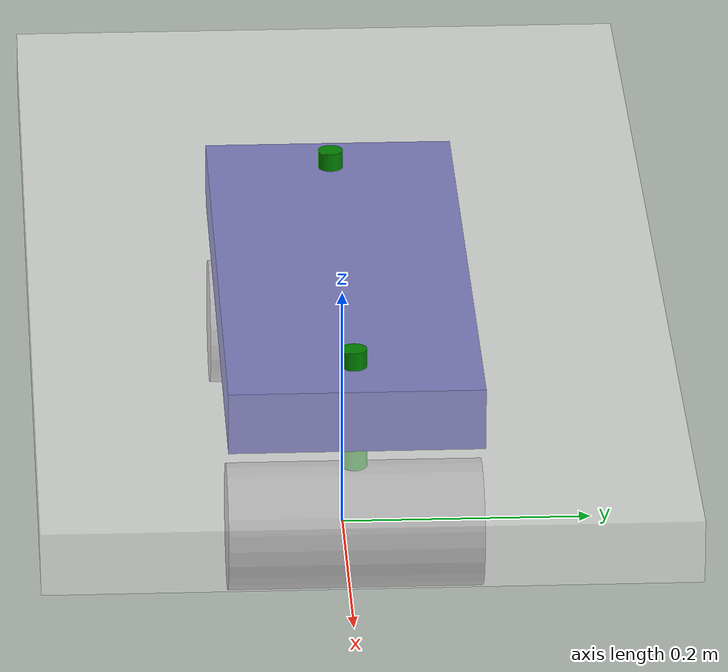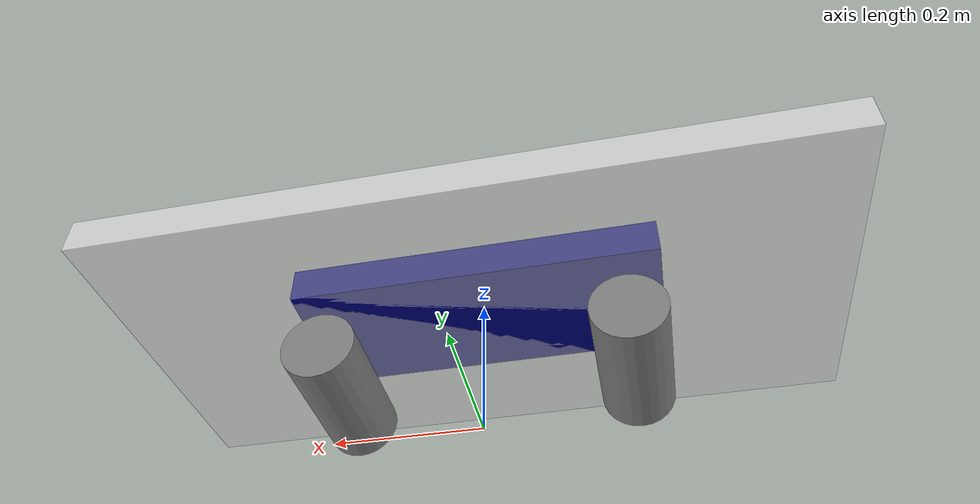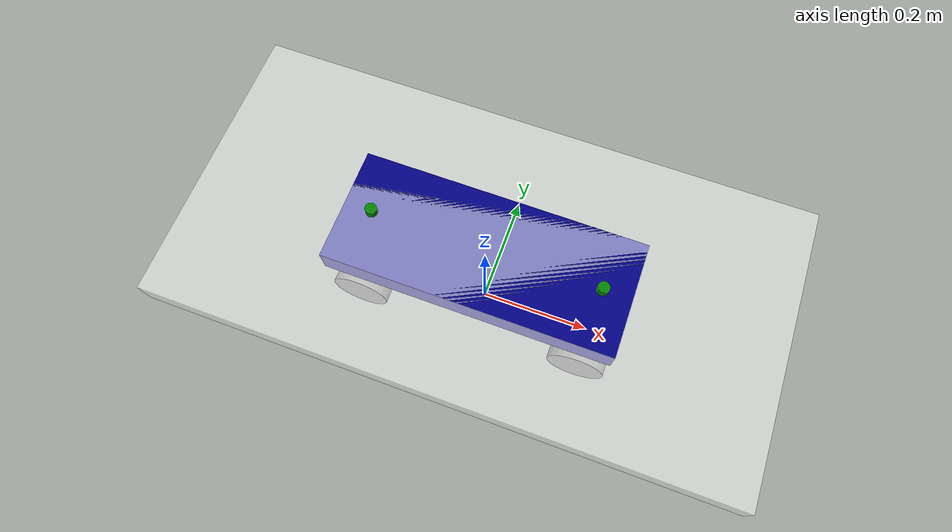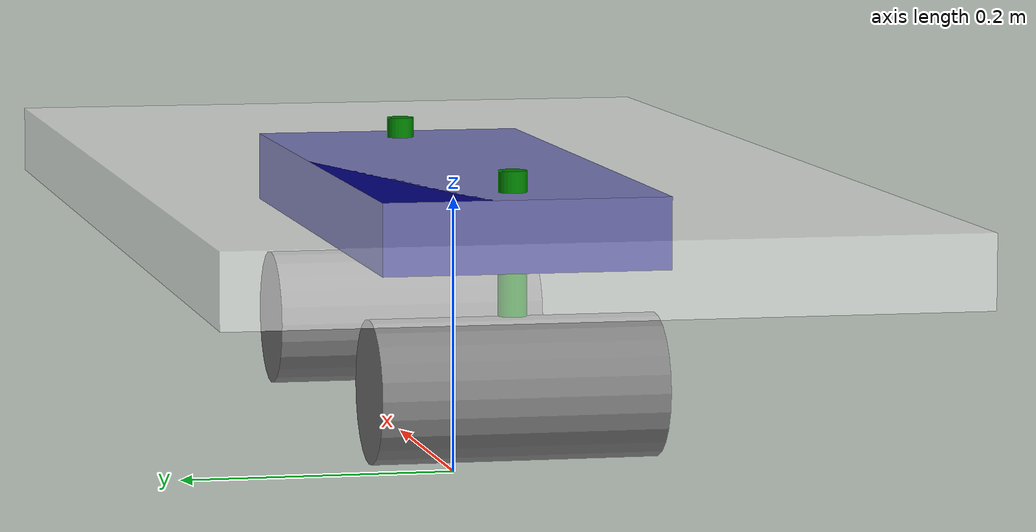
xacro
<?xml version="1.0"?>

<robot name = "bicycle" xmlns:xacro="http://www.ros.org/wiki/xacro">
    <xacro:include filename="inertial_macros.xacro"/>
    <xacro:include filename="ros2_control.xacro" />

    <xacro:property name = "base_length" value = "0.5"/>
    <xacro:property name = "base_width" value = "0.2"/>
    <xacro:property name = "base_height" value = "0.05"/>
    <xacro:property name = "wheel_radius" value = "0.05"/>
    <xacro:property name = "wheel_length" value = "0.2"/>
    <xacro:property name = "cylinder_length" value = "0.1"/>
    <xacro:property name = "cylinder_radius" value = "0.01"/>

    <material name="blue">
        <color rgba="0 0 0.5 1" />
    </material>
    <material name="grey">
        <color rgba="0.5 0.5 0.5 1" />
    </material>
    <material name="green">
        <color rgba="0 0.5 0 1" />
    </material>
    <material name="red">
        <color rgba="0.5 0 0 1" />
    </material>
    <material name = "white">
        <color rgba = "1 1 1 0.5"/>
    </material>

    <link name = "base_footprint"/>
    <link name = "base_link">
        <visual>
            <geometry>
                <box size = "${base_length} ${base_width} ${base_height}"/>
            </geometry>
            <origin xyz = "0 0 0"/>
            <material name = "blue"/>
        </visual>
        <collision>
            <geometry>
                <box size = "${base_length} ${base_width} ${base_height}"/>
            </geometry>
            <origin xyz = "0 0 0"/>
        </collision>
        <xacro:inertial_box mass="0.01" x="0.5" y="0.1" z="0.05">
            <origin xyz="0 0 0" rpy="0 0 0"/>
        </xacro:inertial_box>
    </link>

    <link name = "base_visual">
        <visual>
            <geometry>
                <box size = "1 0.5 ${base_height}"/>
            </geometry>
            <origin xyz = "0 0 0"/>
            <material name = "white"/>
        </visual>
    </link>

    <joint name = "vis_base" type = "fixed">
        <origin xyz = "0 0 0"/>
        <parent link = "base_link"/>
        <child link = "base_visual"/>
    </joint>

    <link name = "front_wheel">
        <visual>
            <geometry>
                <cylinder radius = "${wheel_radius}" length = "${wheel_length}"/>
            </geometry>
            <origin xyz = "0 0 0" rpy = "0 0 0"/>
            <material name = "grey"/>
        </visual>
        <collision>
            <geometry>
                <cylinder radius = "${wheel_radius}" length = "${wheel_length}"/>
            </geometry>
            <origin xyz = "0 0 0" rpy = "0 0 0"/>
        </collision>
        <xacro:inertial_cylinder mass="0.01" length="${wheel_length}" radius="${wheel_radius}">
            <origin xyz = "0 0 0" rpy ="0 0 0"/>
        </xacro:inertial_cylinder>
    </link>

    <link name = "rear_wheel">
        <visual>
            <geometry>
                <cylinder radius = "${wheel_radius}" length = "${wheel_length}"/>
            </geometry>
            <origin xyz = "0 0 0" rpy = "0 0 0"/>
            <material name = "grey"/>
        </visual>
        <collision>
            <geometry>
                <cylinder radius = "${wheel_radius}" length = "${wheel_length}"/>
            </geometry>
            <origin xyz = "0 0 0" rpy = "0 0 0"/>
        </collision>
        <xacro:inertial_cylinder mass="0.01" length="${wheel_length}" radius="${wheel_radius}">
            <origin xyz = "0 0 0" rpy ="0 0 0"/>
        </xacro:inertial_cylinder>
    </link>

    <link name = "front_wheel_cylinder">
        <visual>
            <geometry>
                <cylinder radius = "0.01" length = "${cylinder_length}"/>
            </geometry>
            <origin xyz = "0 0 0" rpy = "0 0 0"/>
            <material name = "green"/>
        </visual>
        <collision>
            <geometry>
                <cylinder radius = "0.01" length = "${cylinder_length}"/>
            </geometry>
            <origin xyz = "0 0 0" rpy = "0 0 0"/>
        </collision>
        <xacro:inertial_cylinder mass="0.005" length="${cylinder_length}" radius="${cylinder_radius}">
            <origin xyz = "0 0 0" rpy ="0 0 0"/>
        </xacro:inertial_cylinder>
    </link>

    <link name = "rear_wheel_cylinder">
        <visual>
            <geometry>
                <cylinder radius = "0.01" length = "${cylinder_length}"/>
            </geometry>
            <origin xyz = "0 0 0" rpy = "0 0 0"/>
            <material name = "green"/>
        </visual>
        <collision>
            <geometry>
                <cylinder radius = "0.01" length = "${cylinder_length}"/>
            </geometry>
            <origin xyz = "0 0 0" rpy = "0 0 0"/>
        </collision>
        <xacro:inertial_cylinder mass="0.005" length="${cylinder_length}" radius="${cylinder_radius}">
            <origin xyz = "0 0 0" rpy ="0 0 0"/>
        </xacro:inertial_cylinder>
    </link>

    <joint name = "base_joint" type = "fixed">
        <origin xyz = "0 0 0.2"/>
        <parent link = "base_footprint"/>
        <child link = "base_link"/>
    </joint>

    <joint name = "steering_joint" type = "revolute">
        <origin xyz = "${base_length/2 - wheel_radius} 0 -0.01" rpy = "0 0 0"/>
        <parent link = "base_link"/>
        <child link = "front_wheel_cylinder"/>
        <axis xyz = "0 0 1"/>
        <limit lower="-0.4" upper="0.4" effort="100.0" velocity="0.0"/>
    </joint>

    <joint name = "front_wheel_joint" type = "continuous">
        <origin xyz = "0 0 ${-wheel_radius-wheel_length/4}" rpy = "${-pi/2} 0 0"/>
        <parent link = "front_wheel_cylinder"/>
        <child link = "front_wheel"/>
        <axis xyz = "0 0 1"/>
    </joint>

        <joint name = "base_rear_cylinder_joint" type = "fixed">
        <origin xyz = "${-base_length/2 + wheel_radius} 0 -0.01" rpy = "0 0 0"/>
        <parent link = "base_link"/>
        <child link = "rear_wheel_cylinder"/>
    </joint>

    <joint name = "rear_wheel_joint" type = "continuous">
        <origin xyz = "0 0 ${-wheel_radius-wheel_length/4}" rpy = "${-pi/2} 0 0"/>
        <parent link = "rear_wheel_cylinder"/>
        <child link = "rear_wheel"/>
        <axis xyz = "0 0 1"/>
    </joint>

    <gazebo reference="base_link">
        <material>Gazebo/Red</material>
    </gazebo>

</robot>
